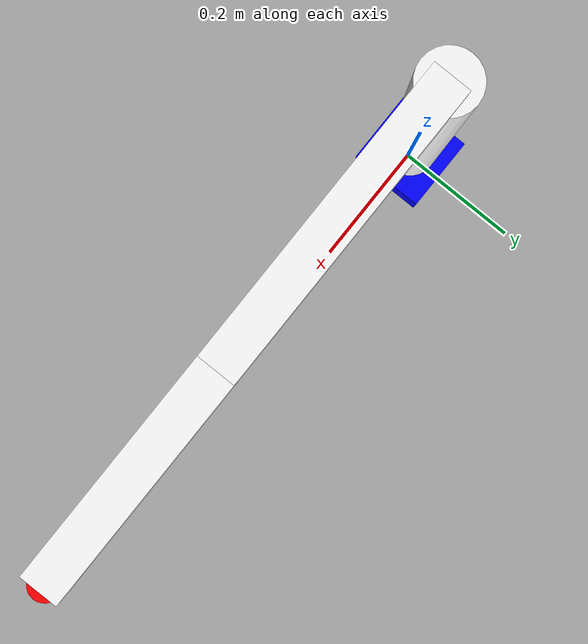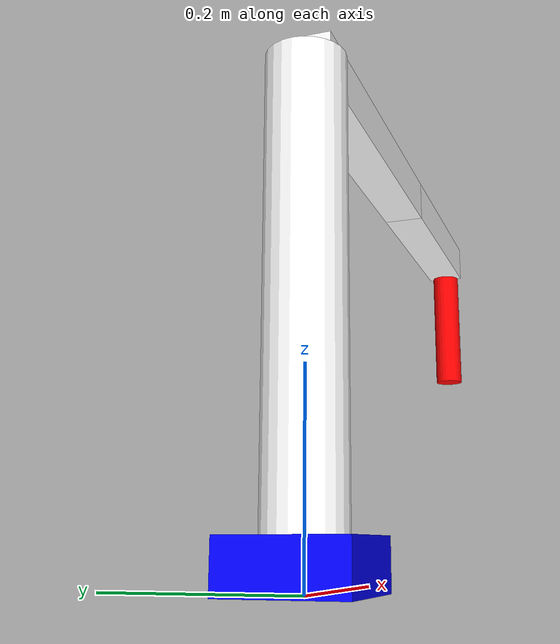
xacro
<?xml version="1.0"?>
<robot xmlns:xacro="http://www.ros.org/wiki/xacro" name="scara">
    <xacro:include filename="$(find scara_description)/urdf/scara.urdf"/>
    <xacro:include filename="$(find scara_description)/config/materials.urdf"/>
    <xacro:include filename="$(find scara_description)/ros2_control/scara.ros2_control.urdf"/>
</robot>

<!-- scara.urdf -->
<robot name="scara" xmlns:xacro="http://www.ros.org/wiki/xacro">

    <!-- World -->
    <link name = "world"/>

    <!-- Base -->
     <link name = "base_link">
        <visual>
            <geometry>
                <box size = "0.12 0.12 0.05"/>
            </geometry>
            <material name = "blue"/>
            <origin xyz = "0 0 0.025"/>
        </visual>
        <inertial>
            <mass value = "1"/>
            <origin xyz = "0 0 0.025" rpy = "0 0 0"/>
            <inertia ixx = "1" ixy = "0" ixz = "0" iyy = "1" iyz = "0" izz = "1"/>
        </inertial>
        <collision>
            <geometry>
                <box size = "0.12 0.12 0.05"/>
            </geometry>
            <material name = "blue"/>
            <origin xyz = "0 0 0.025"/>
        </collision>
     </link>

     <joint name = "base2world" type = "fixed">
        <parent link = "world"/>
        <child link = "base_link"/>
     </joint>

     <!-- Link 1 -->
     <link name = "link_1">
        <visual>
            <geometry>
                <cylinder length = "0.45" radius = "0.04"/>
            </geometry>
            <material name = "white"/>
            <origin xyz = "0 0 0.225"/>
            </visual>
            <inertial>
                <mass value = "0.5"/>
                <origin xyz = "0 0 0.225" rpy = "0 0 0"/>
                <inertia ixx = "0.5" ixy = "0" ixz = "0" iyy = "0.5" iyz = "0" izz = "0.5"/>
            </inertial>
            <collision>
                <geometry>
                    <cylinder length = "0.45" radius = "0.04"/>
                </geometry>
                <origin xyz = "0 0 0.225"/>
            </collision>
            </link>

    <!-- Joint 1 -->
    <joint name = "joint_1" type = "revolute">
        <parent link = "base_link"/>
        <child link = "link_1"/>
        <origin xyz = "0 0 0.05"/>
        <axis xyz = "0 0 1"/>
        <limit effort = "1000" lower = "-1.57" upper = "1.57" velocity = "0.5"/>
    </joint>

    <!-- Arm 1 -->
        <link name = "arm_1">
        <visual>
            <geometry>
                <box size = "0.4 0.05 0.05"/>
            </geometry>
            <material name = "white"/>
            <origin xyz = "0.2 0 0"/>
        </visual>
        <inertial>
            <mass value = "0.5"/>
            <origin xyz = "0.2 0 0" rpy = "0 0 0"/>
            <inertia ixx = "0.01" ixy = "0" ixz = "0" iyy = "0.01" iyz = "0" izz = "0.01"/>
        </inertial>
        <collision>
            <geometry>
                <box size = "0.4 0.05 0.05"/>
            </geometry>
            <origin xyz = "0.2 0 0"/>
        </collision>
        </link>

        <joint name = "arm_1_attach" type = "fixed">
            <parent link = "link_1"/>
            <child link = "arm_1"/>
            <origin xyz = "0 0 0.45"/>
        </joint>

    <!-- Link 2 -->
        <link name = "link_2">
        <visual>
            <geometry>
                <box size = "0.3 0.05 0.05"/>
            </geometry>
                <material name = "white"/>
                <origin xyz = "0.15 0 0"/>
        </visual>
        <inertial>
            <mass value = "0.3"/>
            <origin xyz = "0.15 0 0" rpy = "0 0 0"/>
            <inertia ixx = "0.01" ixy = "0" ixz = "0" iyy = "0.01" iyz = "0" izz = "0.01"/>
        </inertial>
        <collision>
            <geometry>
                <box size = "0.3 0.05 0.05"/>
            </geometry>
            <origin xyz = "0.15 0 0"/>
        </collision>
        </link>

    <!-- Joint 2 -->
    <joint name = "joint_2" type = "revolute">
        <parent link = "arm_1"/>
        <child link = "link_2"/>
        <origin xyz = "0.4 0 0"/>
        <axis xyz = "0 0 1"/>
        <limit effort = "1000" lower = "-1.57" upper = "1.57" velocity = "0.5"/>
        <dynamics damping = "0.2" friction = "0.1"/>
    </joint>

    <!-- EE Shaft-->
    <link name = "link_3">
        <visual>
            <geometry>
                <cylinder length = "0.2" radius = "0.02"/>
            </geometry>
            <material name = "red"/>
            <origin xyz = "0 0 -0.1" rpy = "0 0 0" />
        </visual>
        <inertial>
            <mass value = "0.1"/>
            <origin xyz = "0 0 -0.1" rpy = "0 0 0"/>
            <inertia ixx = "0.001" ixy = "0" ixz = "0" iyy = "0.001" iyz = "0" izz = "0.001"/>
        </inertial>
        <collision>
            <geometry>
                <cylinder length = "0.2" radius = "0.02"/>
            </geometry>
            <origin xyz = "0 0 -0.1"/>
        </collision>
    </link>

    <!-- Joint 3 -->
    <joint name = "joint_3" type = "prismatic">
        <parent link = "link_2"/>
        <child link = "link_3"/>
        <origin xyz = "0.3 0 0"/>
        <axis xyz = "0 0 1"/>
        <limit effort = "1000" lower = "-0.2" upper = "0.2" velocity = "0.5"/>
        <dynamics damping = "0.1" friction = "0.05"/>
    </joint>

    <!-- Tool -->
     <link name = "tool0"/>
     <joint name = "tool0_joint" type = "fixed">
        <parent link = "link_3"/>
        <child link = "tool0"/>
        <origin xyz = "0 0 -0.2"/>
    </joint>

</robot>

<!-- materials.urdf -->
<robot name="scara" xmlns:xacro="http://www.ros.org/wiki/xacro">
  <material name="blue">
    <color rgba="0.0 0.0 1.0 1.0"/>
  </material>
  <material name="white">
    <color rgba="1.0 1.0 1.0 1.0"/>
  </material>
  <material name="red">
    <color rgba="1.0 0.0 0.0 1.0"/>
  </material>
</robot>
